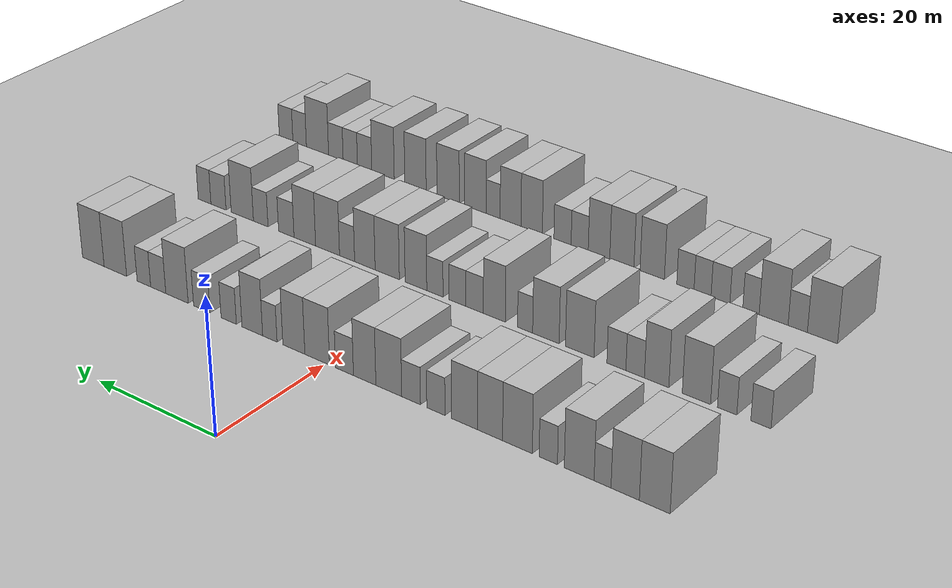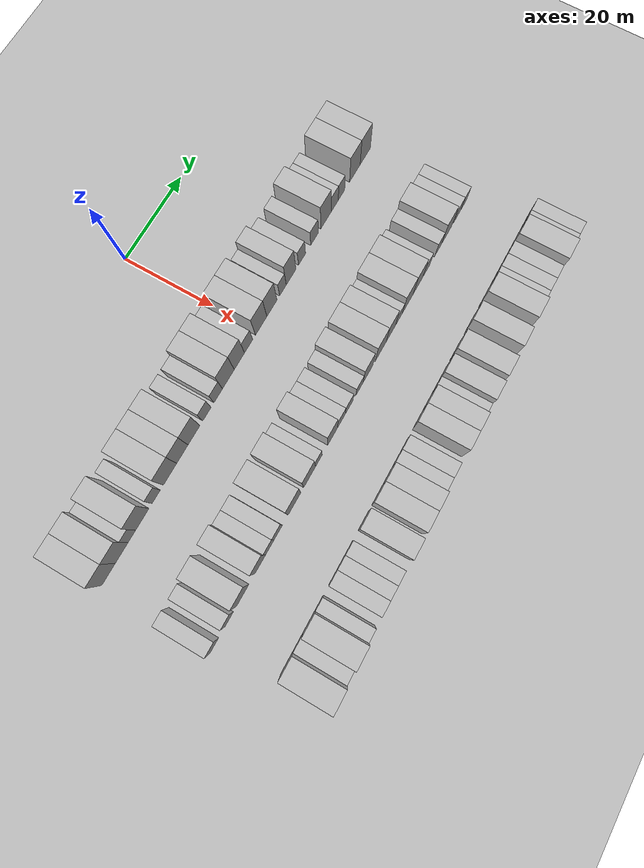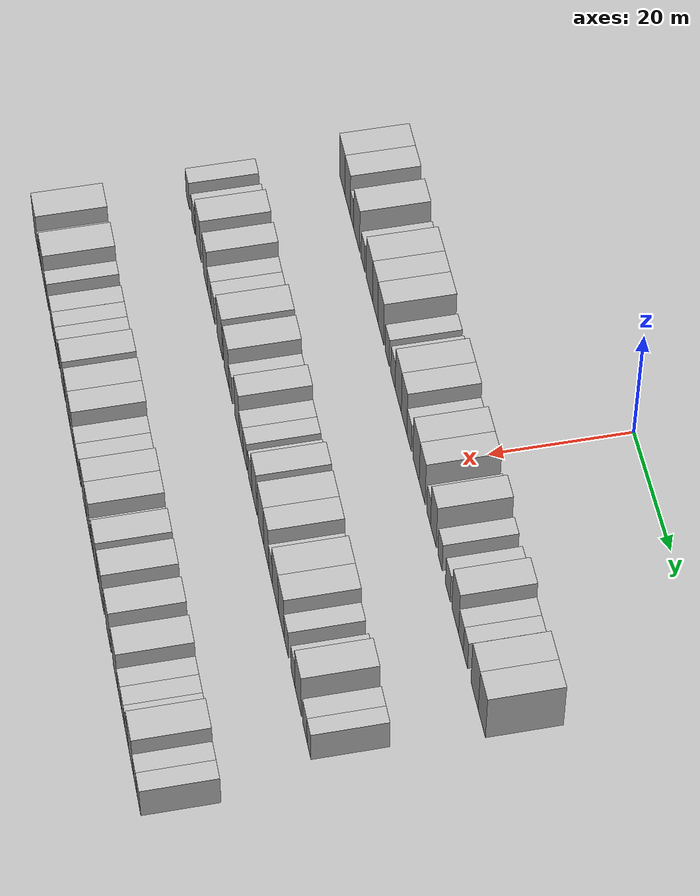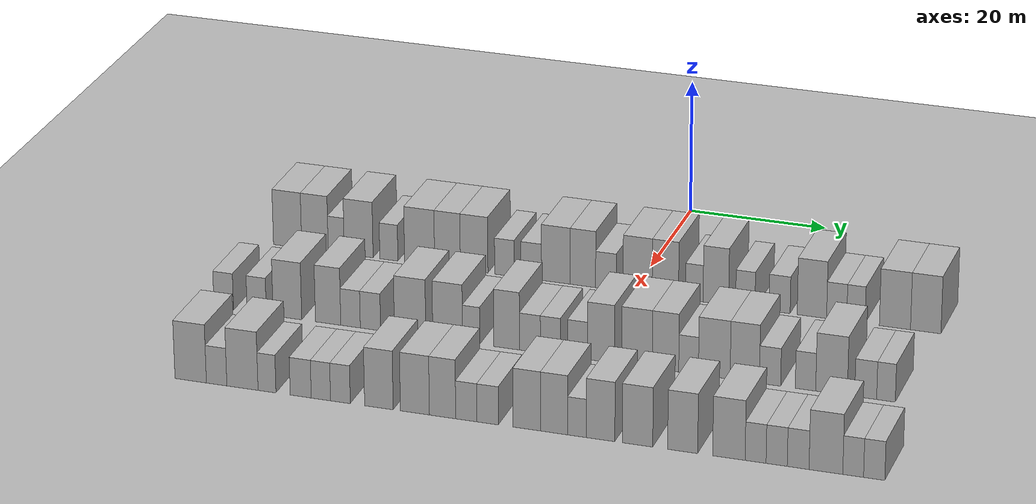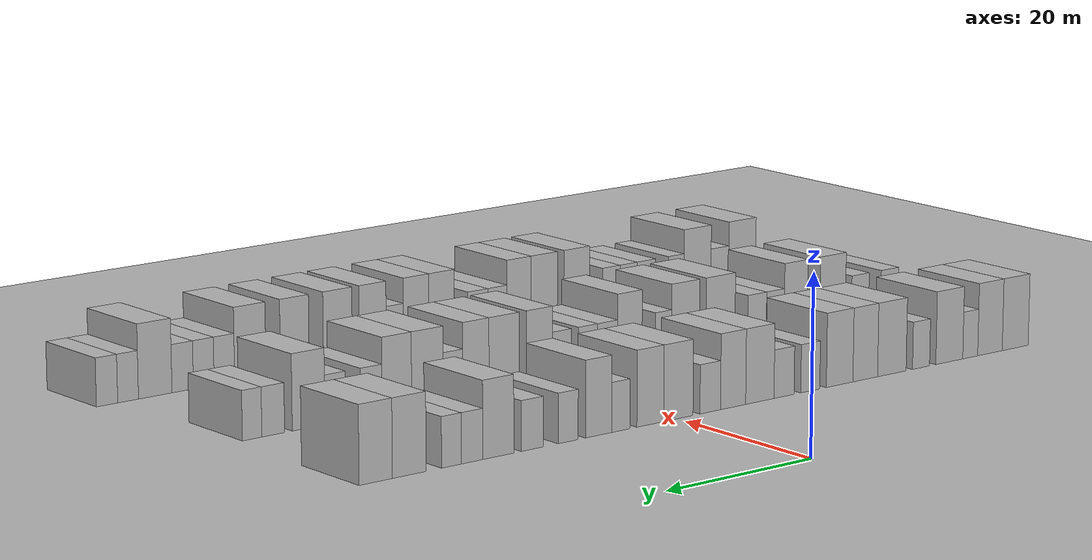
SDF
<sdf version="1.6">
 <world name="default">
  <include><name>ground_plane_1</name><uri>model://HANNAS_ground_plane</uri></include>
  <include>
   <name>ground_plane_2</name>
   <uri>model://HANNAS_ground_plane</uri>
   <pose>100 0 0  0 0 0</pose>
  </include>
  <model name="building_46">
   <static>1</static>
   <pose>25.0000 -50.6157 0 0.000000 0.000000 0.000000</pose>
   <link name="link">
    <pose>0 0 4.50 0 0 0</pose>
    <collision name="collision"><geometry><box><size>10.0000 4.2620 9.0000</size></box></geometry></collision>
    <visual name="visual">
     <cast_shadows>0</cast_shadows>
     <geometry><box><size>10.0000 4.2620 9.0000</size></box></geometry>
     <material>
      <script>
       <uri>model://HANNAS_wall/materials/scripts</uri>
       <uri>model://HANNAS_wall/materials/textures</uri>
       <name>vrc/HANNAS_wall</name>
      </script>
     </material>
    </visual>
   </link>
  </model>
  <model name="building_47">
   <static>1</static>
   <pose>25.0000 -46.4929 0 0.000000 0.000000 0.000000</pose>
   <link name="link">
    <pose>0 0 4.50 0 0 0</pose>
    <collision name="collision"><geometry><box><size>10.0000 3.9836 9.0000</size></box></geometry></collision>
    <visual name="visual">
     <cast_shadows>0</cast_shadows>
     <geometry><box><size>10.0000 3.9836 9.0000</size></box></geometry>
     <material>
      <script>
       <uri>model://HANNAS_wall/materials/scripts</uri>
       <uri>model://HANNAS_wall/materials/textures</uri>
       <name>vrc/HANNAS_wall</name>
      </script>
     </material>
    </visual>
   </link>
  </model>
  <model name="building_48">
   <static>1</static>
   <pose>25.0000 -43.2947 0 0.000000 0.000000 0.000000</pose>
   <link name="link">
    <pose>0 0 3.00 0 0 0</pose>
    <collision name="collision"><geometry><box><size>10.0000 2.4129 6.0000</size></box></geometry></collision>
    <visual name="visual">
     <cast_shadows>0</cast_shadows>
     <geometry><box><size>10.0000 2.4129 6.0000</size></box></geometry>
     <material>
      <script>
       <uri>model://HANNAS_wall/materials/scripts</uri>
       <uri>model://HANNAS_wall/materials/textures</uri>
       <name>vrc/HANNAS_wall</name>
      </script>
     </material>
    </visual>
   </link>
  </model>
  <model name="building_49">
   <static>1</static>
   <pose>25.0000 -39.9360 0 0.000000 0.000000 0.000000</pose>
   <link name="link">
    <pose>0 0 4.50 0 0 0</pose>
    <collision name="collision"><geometry><box><size>10.0000 4.3044 9.0000</size></box></geometry></collision>
    <visual name="visual">
     <cast_shadows>0</cast_shadows>
     <geometry><box><size>10.0000 4.3044 9.0000</size></box></geometry>
     <material>
      <script>
       <uri>model://HANNAS_wall/materials/scripts</uri>
       <uri>model://HANNAS_wall/materials/textures</uri>
       <name>vrc/HANNAS_wall</name>
      </script>
     </material>
    </visual>
   </link>
  </model>
  <model name="building_50">
   <static>1</static>
   <pose>25.0000 -35.4360 0 0.000000 0.000000 0.000000</pose>
   <link name="link">
    <pose>0 0 3.00 0 0 0</pose>
    <collision name="collision"><geometry><box><size>10.0000 2.6955 6.0000</size></box></geometry></collision>
    <visual name="visual">
     <cast_shadows>0</cast_shadows>
     <geometry><box><size>10.0000 2.6955 6.0000</size></box></geometry>
     <material>
      <script>
       <uri>model://HANNAS_wall/materials/scripts</uri>
       <uri>model://HANNAS_wall/materials/textures</uri>
       <name>vrc/HANNAS_wall</name>
      </script>
     </material>
    </visual>
   </link>
  </model>
  <model name="building_51">
   <static>1</static>
   <pose>25.0000 -30.8599 0 0.000000 0.000000 0.000000</pose>
   <link name="link">
    <pose>0 0 4.50 0 0 0</pose>
    <collision name="collision"><geometry><box><size>10.0000 4.4568 9.0000</size></box></geometry></collision>
    <visual name="visual">
     <cast_shadows>0</cast_shadows>
     <geometry><box><size>10.0000 4.4568 9.0000</size></box></geometry>
     <material>
      <script>
       <uri>model://HANNAS_wall/materials/scripts</uri>
       <uri>model://HANNAS_wall/materials/textures</uri>
       <name>vrc/HANNAS_wall</name>
      </script>
     </material>
    </visual>
   </link>
  </model>
  <model name="building_52">
   <static>1</static>
   <pose>25.0000 -26.7289 0 0.000000 0.000000 0.000000</pose>
   <link name="link">
    <pose>0 0 4.50 0 0 0</pose>
    <collision name="collision"><geometry><box><size>10.0000 3.8052 9.0000</size></box></geometry></collision>
    <visual name="visual">
     <cast_shadows>0</cast_shadows>
     <geometry><box><size>10.0000 3.8052 9.0000</size></box></geometry>
     <material>
      <script>
       <uri>model://HANNAS_wall/materials/scripts</uri>
       <uri>model://HANNAS_wall/materials/textures</uri>
       <name>vrc/HANNAS_wall</name>
      </script>
     </material>
    </visual>
   </link>
  </model>
  <model name="building_53">
   <static>1</static>
   <pose>25.0000 -22.7991 0 0.000000 0.000000 0.000000</pose>
   <link name="link">
    <pose>0 0 4.50 0 0 0</pose>
    <collision name="collision"><geometry><box><size>10.0000 4.0543 9.0000</size></box></geometry></collision>
    <visual name="visual">
     <cast_shadows>0</cast_shadows>
     <geometry><box><size>10.0000 4.0543 9.0000</size></box></geometry>
     <material>
      <script>
       <uri>model://HANNAS_wall/materials/scripts</uri>
       <uri>model://HANNAS_wall/materials/textures</uri>
       <name>vrc/HANNAS_wall</name>
      </script>
     </material>
    </visual>
   </link>
  </model>
  <model name="building_54">
   <static>1</static>
   <pose>25.0000 -18.3393 0 0.000000 0.000000 0.000000</pose>
   <link name="link">
    <pose>0 0 3.00 0 0 0</pose>
    <collision name="collision"><geometry><box><size>10.0000 2.8654 6.0000</size></box></geometry></collision>
    <visual name="visual">
     <cast_shadows>0</cast_shadows>
     <geometry><box><size>10.0000 2.8654 6.0000</size></box></geometry>
     <material>
      <script>
       <uri>model://HANNAS_wall/materials/scripts</uri>
       <uri>model://HANNAS_wall/materials/textures</uri>
       <name>vrc/HANNAS_wall</name>
      </script>
     </material>
    </visual>
   </link>
  </model>
  <model name="building_55">
   <static>1</static>
   <pose>25.0000 -14.4096 0 0.000000 0.000000 0.000000</pose>
   <link name="link">
    <pose>0 0 3.00 0 0 0</pose>
    <collision name="collision"><geometry><box><size>10.0000 2.9939 6.0000</size></box></geometry></collision>
    <visual name="visual">
     <cast_shadows>0</cast_shadows>
     <geometry><box><size>10.0000 2.9939 6.0000</size></box></geometry>
     <material>
      <script>
       <uri>model://HANNAS_wall/materials/scripts</uri>
       <uri>model://HANNAS_wall/materials/textures</uri>
       <name>vrc/HANNAS_wall</name>
      </script>
     </material>
    </visual>
   </link>
  </model>
  <model name="building_56">
   <static>1</static>
   <pose>25.0000 -10.8188 0 0.000000 0.000000 0.000000</pose>
   <link name="link">
    <pose>0 0 4.50 0 0 0</pose>
    <collision name="collision"><geometry><box><size>10.0000 4.1877 9.0000</size></box></geometry></collision>
    <visual name="visual">
     <cast_shadows>0</cast_shadows>
     <geometry><box><size>10.0000 4.1877 9.0000</size></box></geometry>
     <material>
      <script>
       <uri>model://HANNAS_wall/materials/scripts</uri>
       <uri>model://HANNAS_wall/materials/textures</uri>
       <name>vrc/HANNAS_wall</name>
      </script>
     </material>
    </visual>
   </link>
  </model>
  <model name="building_57">
   <static>1</static>
   <pose>25.0000 -6.8836 0 0.000000 0.000000 0.000000</pose>
   <link name="link">
    <pose>0 0 4.50 0 0 0</pose>
    <collision name="collision"><geometry><box><size>10.0000 3.6826 9.0000</size></box></geometry></collision>
    <visual name="visual">
     <cast_shadows>0</cast_shadows>
     <geometry><box><size>10.0000 3.6826 9.0000</size></box></geometry>
     <material>
      <script>
       <uri>model://HANNAS_wall/materials/scripts</uri>
       <uri>model://HANNAS_wall/materials/textures</uri>
       <name>vrc/HANNAS_wall</name>
      </script>
     </material>
    </visual>
   </link>
  </model>
  <model name="building_58">
   <static>1</static>
   <pose>25.0000 -3.5515 0 0.000000 0.000000 0.000000</pose>
   <link name="link">
    <pose>0 0 3.00 0 0 0</pose>
    <collision name="collision"><geometry><box><size>10.0000 2.9817 6.0000</size></box></geometry></collision>
    <visual name="visual">
     <cast_shadows>0</cast_shadows>
     <geometry><box><size>10.0000 2.9817 6.0000</size></box></geometry>
     <material>
      <script>
       <uri>model://HANNAS_wall/materials/scripts</uri>
       <uri>model://HANNAS_wall/materials/textures</uri>
       <name>vrc/HANNAS_wall</name>
      </script>
     </material>
    </visual>
   </link>
  </model>
  <model name="building_59">
   <static>1</static>
   <pose>25.0000 1.0328 0 0.000000 0.000000 0.000000</pose>
   <link name="link">
    <pose>0 0 4.50 0 0 0</pose>
    <collision name="collision"><geometry><box><size>10.0000 4.1870 9.0000</size></box></geometry></collision>
    <visual name="visual">
     <cast_shadows>0</cast_shadows>
     <geometry><box><size>10.0000 4.1870 9.0000</size></box></geometry>
     <material>
      <script>
       <uri>model://HANNAS_wall/materials/scripts</uri>
       <uri>model://HANNAS_wall/materials/textures</uri>
       <name>vrc/HANNAS_wall</name>
      </script>
     </material>
    </visual>
   </link>
  </model>
  <model name="building_60">
   <static>1</static>
   <pose>25.0000 5.0197 0 0.000000 0.000000 0.000000</pose>
   <link name="link">
    <pose>0 0 4.50 0 0 0</pose>
    <collision name="collision"><geometry><box><size>10.0000 3.7867 9.0000</size></box></geometry></collision>
    <visual name="visual">
     <cast_shadows>0</cast_shadows>
     <geometry><box><size>10.0000 3.7867 9.0000</size></box></geometry>
     <material>
      <script>
       <uri>model://HANNAS_wall/materials/scripts</uri>
       <uri>model://HANNAS_wall/materials/textures</uri>
       <name>vrc/HANNAS_wall</name>
      </script>
     </material>
    </visual>
   </link>
  </model>
  <model name="building_61">
   <static>1</static>
   <pose>25.0000 9.1701 0 0.000000 0.000000 0.000000</pose>
   <link name="link">
    <pose>0 0 3.00 0 0 0</pose>
    <collision name="collision"><geometry><box><size>10.0000 2.5142 6.0000</size></box></geometry></collision>
    <visual name="visual">
     <cast_shadows>0</cast_shadows>
     <geometry><box><size>10.0000 2.5142 6.0000</size></box></geometry>
     <material>
      <script>
       <uri>model://HANNAS_wall/materials/scripts</uri>
       <uri>model://HANNAS_wall/materials/textures</uri>
       <name>vrc/HANNAS_wall</name>
      </script>
     </material>
    </visual>
   </link>
  </model>
  <model name="building_62">
   <static>1</static>
   <pose>25.0000 12.2522 0 0.000000 0.000000 0.000000</pose>
   <link name="link">
    <pose>0 0 4.50 0 0 0</pose>
    <collision name="collision"><geometry><box><size>10.0000 3.6499 9.0000</size></box></geometry></collision>
    <visual name="visual">
     <cast_shadows>0</cast_shadows>
     <geometry><box><size>10.0000 3.6499 9.0000</size></box></geometry>
     <material>
      <script>
       <uri>model://HANNAS_wall/materials/scripts</uri>
       <uri>model://HANNAS_wall/materials/textures</uri>
       <name>vrc/HANNAS_wall</name>
      </script>
     </material>
    </visual>
   </link>
  </model>
  <model name="building_63">
   <static>1</static>
   <pose>25.0000 16.4479 0 0.000000 0.000000 0.000000</pose>
   <link name="link">
    <pose>0 0 3.00 0 0 0</pose>
    <collision name="collision"><geometry><box><size>10.0000 2.7415 6.0000</size></box></geometry></collision>
    <visual name="visual">
     <cast_shadows>0</cast_shadows>
     <geometry><box><size>10.0000 2.7415 6.0000</size></box></geometry>
     <material>
      <script>
       <uri>model://HANNAS_wall/materials/scripts</uri>
       <uri>model://HANNAS_wall/materials/textures</uri>
       <name>vrc/HANNAS_wall</name>
      </script>
     </material>
    </visual>
   </link>
  </model>
  <model name="building_64">
   <static>1</static>
   <pose>25.0000 21.3149 0 0.000000 0.000000 0.000000</pose>
   <link name="link">
    <pose>0 0 3.00 0 0 0</pose>
    <collision name="collision"><geometry><box><size>10.0000 2.9923 6.0000</size></box></geometry></collision>
    <visual name="visual">
     <cast_shadows>0</cast_shadows>
     <geometry><box><size>10.0000 2.9923 6.0000</size></box></geometry>
     <material>
      <script>
       <uri>model://HANNAS_wall/materials/scripts</uri>
       <uri>model://HANNAS_wall/materials/textures</uri>
       <name>vrc/HANNAS_wall</name>
      </script>
     </material>
    </visual>
   </link>
  </model>
  <model name="building_65">
   <static>1</static>
   <pose>25.0000 25.8842 0 0.000000 0.000000 0.000000</pose>
   <link name="link">
    <pose>0 0 4.50 0 0 0</pose>
    <collision name="collision"><geometry><box><size>10.0000 4.1463 9.0000</size></box></geometry></collision>
    <visual name="visual">
     <cast_shadows>0</cast_shadows>
     <geometry><box><size>10.0000 4.1463 9.0000</size></box></geometry>
     <material>
      <script>
       <uri>model://HANNAS_wall/materials/scripts</uri>
       <uri>model://HANNAS_wall/materials/textures</uri>
       <name>vrc/HANNAS_wall</name>
      </script>
     </material>
    </visual>
   </link>
  </model>
  <model name="building_66">
   <static>1</static>
   <pose>25.0000 29.3774 0 0.000000 0.000000 0.000000</pose>
   <link name="link">
    <pose>0 0 3.00 0 0 0</pose>
    <collision name="collision"><geometry><box><size>10.0000 2.8401 6.0000</size></box></geometry></collision>
    <visual name="visual">
     <cast_shadows>0</cast_shadows>
     <geometry><box><size>10.0000 2.8401 6.0000</size></box></geometry>
     <material>
      <script>
       <uri>model://HANNAS_wall/materials/scripts</uri>
       <uri>model://HANNAS_wall/materials/textures</uri>
       <name>vrc/HANNAS_wall</name>
      </script>
     </material>
    </visual>
   </link>
  </model>
  <model name="building_67">
   <static>1</static>
   <pose>25.0000 32.0811 0 0.000000 0.000000 0.000000</pose>
   <link name="link">
    <pose>0 0 3.00 0 0 0</pose>
    <collision name="collision"><geometry><box><size>10.0000 2.5674 6.0000</size></box></geometry></collision>
    <visual name="visual">
     <cast_shadows>0</cast_shadows>
     <geometry><box><size>10.0000 2.5674 6.0000</size></box></geometry>
     <material>
      <script>
       <uri>model://HANNAS_wall/materials/scripts</uri>
       <uri>model://HANNAS_wall/materials/textures</uri>
       <name>vrc/HANNAS_wall</name>
      </script>
     </material>
    </visual>
   </link>
  </model>
  <model name="building_68">
   <static>1</static>
   <pose>25.0000 37.5372 0 0.000000 0.000000 0.000000</pose>
   <link name="link">
    <pose>0 0 4.50 0 0 0</pose>
    <collision name="collision"><geometry><box><size>10.0000 4.3449 9.0000</size></box></geometry></collision>
    <visual name="visual">
     <cast_shadows>0</cast_shadows>
     <geometry><box><size>10.0000 4.3449 9.0000</size></box></geometry>
     <material>
      <script>
       <uri>model://HANNAS_wall/materials/scripts</uri>
       <uri>model://HANNAS_wall/materials/textures</uri>
       <name>vrc/HANNAS_wall</name>
      </script>
     </material>
    </visual>
   </link>
  </model>
  <model name="building_69">
   <static>1</static>
   <pose>25.0000 41.8256 0 0.000000 0.000000 0.000000</pose>
   <link name="link">
    <pose>0 0 4.50 0 0 0</pose>
    <collision name="collision"><geometry><box><size>10.0000 4.2319 9.0000</size></box></geometry></collision>
    <visual name="visual">
     <cast_shadows>0</cast_shadows>
     <geometry><box><size>10.0000 4.2319 9.0000</size></box></geometry>
     <material>
      <script>
       <uri>model://HANNAS_wall/materials/scripts</uri>
       <uri>model://HANNAS_wall/materials/textures</uri>
       <name>vrc/HANNAS_wall</name>
      </script>
     </material>
    </visual>
   </link>
  </model>
  <model name="building_177">
   <static>1</static>
   <pose>47.0000 -51.5618 0 0.000000 0.000000 0.000000</pose>
   <link name="link">
    <pose>0 0 3.00 0 0 0</pose>
    <collision name="collision"><geometry><box><size>10.0000 2.8732 6.0000</size></box></geometry></collision>
    <visual name="visual">
     <cast_shadows>0</cast_shadows>
     <geometry><box><size>10.0000 2.8732 6.0000</size></box></geometry>
     <material>
      <script>
       <uri>model://HANNAS_wall/materials/scripts</uri>
       <uri>model://HANNAS_wall/materials/textures</uri>
       <name>vrc/HANNAS_wall</name>
      </script>
     </material>
    </visual>
   </link>
  </model>
  <model name="building_178">
   <static>1</static>
   <pose>47.0000 -46.7230 0 0.000000 0.000000 0.000000</pose>
   <link name="link">
    <pose>0 0 3.00 0 0 0</pose>
    <collision name="collision"><geometry><box><size>10.0000 2.8044 6.0000</size></box></geometry></collision>
    <visual name="visual">
     <cast_shadows>0</cast_shadows>
     <geometry><box><size>10.0000 2.8044 6.0000</size></box></geometry>
     <material>
      <script>
       <uri>model://HANNAS_wall/materials/scripts</uri>
       <uri>model://HANNAS_wall/materials/textures</uri>
       <name>vrc/HANNAS_wall</name>
      </script>
     </material>
    </visual>
   </link>
  </model>
  <model name="building_179">
   <static>1</static>
   <pose>47.0000 -42.2359 0 0.000000 0.000000 0.000000</pose>
   <link name="link">
    <pose>0 0 4.50 0 0 0</pose>
    <collision name="collision"><geometry><box><size>10.0000 4.1699 9.0000</size></box></geometry></collision>
    <visual name="visual">
     <cast_shadows>0</cast_shadows>
     <geometry><box><size>10.0000 4.1699 9.0000</size></box></geometry>
     <material>
      <script>
       <uri>model://HANNAS_wall/materials/scripts</uri>
       <uri>model://HANNAS_wall/materials/textures</uri>
       <name>vrc/HANNAS_wall</name>
      </script>
     </material>
    </visual>
   </link>
  </model>
  <model name="building_180">
   <static>1</static>
   <pose>47.0000 -36.3183 0 0.000000 0.000000 0.000000</pose>
   <link name="link">
    <pose>0 0 4.50 0 0 0</pose>
    <collision name="collision"><geometry><box><size>10.0000 3.6653 9.0000</size></box></geometry></collision>
    <visual name="visual">
     <cast_shadows>0</cast_shadows>
     <geometry><box><size>10.0000 3.6653 9.0000</size></box></geometry>
     <material>
      <script>
       <uri>model://HANNAS_wall/materials/scripts</uri>
       <uri>model://HANNAS_wall/materials/textures</uri>
       <name>vrc/HANNAS_wall</name>
      </script>
     </material>
    </visual>
   </link>
  </model>
  <model name="building_181">
   <static>1</static>
   <pose>47.0000 -33.0735 0 0.000000 0.000000 0.000000</pose>
   <link name="link">
    <pose>0 0 3.00 0 0 0</pose>
    <collision name="collision"><geometry><box><size>10.0000 2.8243 6.0000</size></box></geometry></collision>
    <visual name="visual">
     <cast_shadows>0</cast_shadows>
     <geometry><box><size>10.0000 2.8243 6.0000</size></box></geometry>
     <material>
      <script>
       <uri>model://HANNAS_wall/materials/scripts</uri>
       <uri>model://HANNAS_wall/materials/textures</uri>
       <name>vrc/HANNAS_wall</name>
      </script>
     </material>
    </visual>
   </link>
  </model>
  <model name="building_182">
   <static>1</static>
   <pose>47.0000 -30.2008 0 0.000000 0.000000 0.000000</pose>
   <link name="link">
    <pose>0 0 3.00 0 0 0</pose>
    <collision name="collision"><geometry><box><size>10.0000 2.9211 6.0000</size></box></geometry></collision>
    <visual name="visual">
     <cast_shadows>0</cast_shadows>
     <geometry><box><size>10.0000 2.9211 6.0000</size></box></geometry>
     <material>
      <script>
       <uri>model://HANNAS_wall/materials/scripts</uri>
       <uri>model://HANNAS_wall/materials/textures</uri>
       <name>vrc/HANNAS_wall</name>
      </script>
     </material>
    </visual>
   </link>
  </model>
  <model name="building_183">
   <static>1</static>
   <pose>47.0000 -24.4907 0 0.000000 0.000000 0.000000</pose>
   <link name="link">
    <pose>0 0 4.50 0 0 0</pose>
    <collision name="collision"><geometry><box><size>10.0000 4.4991 9.0000</size></box></geometry></collision>
    <visual name="visual">
     <cast_shadows>0</cast_shadows>
     <geometry><box><size>10.0000 4.4991 9.0000</size></box></geometry>
     <material>
      <script>
       <uri>model://HANNAS_wall/materials/scripts</uri>
       <uri>model://HANNAS_wall/materials/textures</uri>
       <name>vrc/HANNAS_wall</name>
      </script>
     </material>
    </visual>
   </link>
  </model>
  <model name="building_184">
   <static>1</static>
   <pose>47.0000 -19.1173 0 0.000000 0.000000 0.000000</pose>
   <link name="link">
    <pose>0 0 4.50 0 0 0</pose>
    <collision name="collision"><geometry><box><size>10.0000 4.2477 9.0000</size></box></geometry></collision>
    <visual name="visual">
     <cast_shadows>0</cast_shadows>
     <geometry><box><size>10.0000 4.2477 9.0000</size></box></geometry>
     <material>
      <script>
       <uri>model://HANNAS_wall/materials/scripts</uri>
       <uri>model://HANNAS_wall/materials/textures</uri>
       <name>vrc/HANNAS_wall</name>
      </script>
     </material>
    </visual>
   </link>
  </model>
  <model name="building_185">
   <static>1</static>
   <pose>47.0000 -15.7662 0 0.000000 0.000000 0.000000</pose>
   <link name="link">
    <pose>0 0 3.00 0 0 0</pose>
    <collision name="collision"><geometry><box><size>10.0000 2.4545 6.0000</size></box></geometry></collision>
    <visual name="visual">
     <cast_shadows>0</cast_shadows>
     <geometry><box><size>10.0000 2.4545 6.0000</size></box></geometry>
     <material>
      <script>
       <uri>model://HANNAS_wall/materials/scripts</uri>
       <uri>model://HANNAS_wall/materials/textures</uri>
       <name>vrc/HANNAS_wall</name>
      </script>
     </material>
    </visual>
   </link>
  </model>
  <model name="building_186">
   <static>1</static>
   <pose>47.0000 -10.7228 0 0.000000 0.000000 0.000000</pose>
   <link name="link">
    <pose>0 0 4.50 0 0 0</pose>
    <collision name="collision"><geometry><box><size>10.0000 3.6322 9.0000</size></box></geometry></collision>
    <visual name="visual">
     <cast_shadows>0</cast_shadows>
     <geometry><box><size>10.0000 3.6322 9.0000</size></box></geometry>
     <material>
      <script>
       <uri>model://HANNAS_wall/materials/scripts</uri>
       <uri>model://HANNAS_wall/materials/textures</uri>
       <name>vrc/HANNAS_wall</name>
      </script>
     </material>
    </visual>
   </link>
  </model>
  <model name="building_187">
   <static>1</static>
   <pose>47.0000 -7.4313 0 0.000000 0.000000 0.000000</pose>
   <link name="link">
    <pose>0 0 3.00 0 0 0</pose>
    <collision name="collision"><geometry><box><size>10.0000 2.9509 6.0000</size></box></geometry></collision>
    <visual name="visual">
     <cast_shadows>0</cast_shadows>
     <geometry><box><size>10.0000 2.9509 6.0000</size></box></geometry>
     <material>
      <script>
       <uri>model://HANNAS_wall/materials/scripts</uri>
       <uri>model://HANNAS_wall/materials/textures</uri>
       <name>vrc/HANNAS_wall</name>
      </script>
     </material>
    </visual>
   </link>
  </model>
  <model name="building_188">
   <static>1</static>
   <pose>47.0000 -4.5357 0 0.000000 0.000000 0.000000</pose>
   <link name="link">
    <pose>0 0 3.00 0 0 0</pose>
    <collision name="collision"><geometry><box><size>10.0000 2.8403 6.0000</size></box></geometry></collision>
    <visual name="visual">
     <cast_shadows>0</cast_shadows>
     <geometry><box><size>10.0000 2.8403 6.0000</size></box></geometry>
     <material>
      <script>
       <uri>model://HANNAS_wall/materials/scripts</uri>
       <uri>model://HANNAS_wall/materials/textures</uri>
       <name>vrc/HANNAS_wall</name>
      </script>
     </material>
    </visual>
   </link>
  </model>
  <model name="building_189">
   <static>1</static>
   <pose>47.0000 -0.7223 0 0.000000 0.000000 0.000000</pose>
   <link name="link">
    <pose>0 0 3.00 0 0 0</pose>
    <collision name="collision"><geometry><box><size>10.0000 2.7866 6.0000</size></box></geometry></collision>
    <visual name="visual">
     <cast_shadows>0</cast_shadows>
     <geometry><box><size>10.0000 2.7866 6.0000</size></box></geometry>
     <material>
      <script>
       <uri>model://HANNAS_wall/materials/scripts</uri>
       <uri>model://HANNAS_wall/materials/textures</uri>
       <name>vrc/HANNAS_wall</name>
      </script>
     </material>
    </visual>
   </link>
  </model>
  <model name="building_190">
   <static>1</static>
   <pose>47.0000 2.5523 0 0.000000 0.000000 0.000000</pose>
   <link name="link">
    <pose>0 0 4.50 0 0 0</pose>
    <collision name="collision"><geometry><box><size>10.0000 3.7625 9.0000</size></box></geometry></collision>
    <visual name="visual">
     <cast_shadows>0</cast_shadows>
     <geometry><box><size>10.0000 3.7625 9.0000</size></box></geometry>
     <material>
      <script>
       <uri>model://HANNAS_wall/materials/scripts</uri>
       <uri>model://HANNAS_wall/materials/textures</uri>
       <name>vrc/HANNAS_wall</name>
      </script>
     </material>
    </visual>
   </link>
  </model>
  <model name="building_191">
   <static>1</static>
   <pose>47.0000 7.5736 0 0.000000 0.000000 0.000000</pose>
   <link name="link">
    <pose>0 0 4.50 0 0 0</pose>
    <collision name="collision"><geometry><box><size>10.0000 4.2803 9.0000</size></box></geometry></collision>
    <visual name="visual">
     <cast_shadows>0</cast_shadows>
     <geometry><box><size>10.0000 4.2803 9.0000</size></box></geometry>
     <material>
      <script>
       <uri>model://HANNAS_wall/materials/scripts</uri>
       <uri>model://HANNAS_wall/materials/textures</uri>
       <name>vrc/HANNAS_wall</name>
      </script>
     </material>
    </visual>
   </link>
  </model>
  <model name="building_192">
   <static>1</static>
   <pose>47.0000 11.5489 0 0.000000 0.000000 0.000000</pose>
   <link name="link">
    <pose>0 0 4.50 0 0 0</pose>
    <collision name="collision"><geometry><box><size>10.0000 3.6703 9.0000</size></box></geometry></collision>
    <visual name="visual">
     <cast_shadows>0</cast_shadows>
     <geometry><box><size>10.0000 3.6703 9.0000</size></box></geometry>
     <material>
      <script>
       <uri>model://HANNAS_wall/materials/scripts</uri>
       <uri>model://HANNAS_wall/materials/textures</uri>
       <name>vrc/HANNAS_wall</name>
      </script>
     </material>
    </visual>
   </link>
  </model>
  <model name="building_193">
   <static>1</static>
   <pose>47.0000 14.7496 0 0.000000 0.000000 0.000000</pose>
   <link name="link">
    <pose>0 0 3.00 0 0 0</pose>
    <collision name="collision"><geometry><box><size>10.0000 2.7311 6.0000</size></box></geometry></collision>
    <visual name="visual">
     <cast_shadows>0</cast_shadows>
     <geometry><box><size>10.0000 2.7311 6.0000</size></box></geometry>
     <material>
      <script>
       <uri>model://HANNAS_wall/materials/scripts</uri>
       <uri>model://HANNAS_wall/materials/textures</uri>
       <name>vrc/HANNAS_wall</name>
      </script>
     </material>
    </visual>
   </link>
  </model>
  <model name="building_194">
   <static>1</static>
   <pose>47.0000 18.3026 0 0.000000 0.000000 0.000000</pose>
   <link name="link">
    <pose>0 0 4.50 0 0 0</pose>
    <collision name="collision"><geometry><box><size>10.0000 4.3749 9.0000</size></box></geometry></collision>
    <visual name="visual">
     <cast_shadows>0</cast_shadows>
     <geometry><box><size>10.0000 4.3749 9.0000</size></box></geometry>
     <material>
      <script>
       <uri>model://HANNAS_wall/materials/scripts</uri>
       <uri>model://HANNAS_wall/materials/textures</uri>
       <name>vrc/HANNAS_wall</name>
      </script>
     </material>
    </visual>
   </link>
  </model>
  <model name="building_195">
   <static>1</static>
   <pose>47.0000 22.4997 0 0.000000 0.000000 0.000000</pose>
   <link name="link">
    <pose>0 0 4.50 0 0 0</pose>
    <collision name="collision"><geometry><box><size>10.0000 4.0193 9.0000</size></box></geometry></collision>
    <visual name="visual">
     <cast_shadows>0</cast_shadows>
     <geometry><box><size>10.0000 4.0193 9.0000</size></box></geometry>
     <material>
      <script>
       <uri>model://HANNAS_wall/materials/scripts</uri>
       <uri>model://HANNAS_wall/materials/textures</uri>
       <name>vrc/HANNAS_wall</name>
      </script>
     </material>
    </visual>
   </link>
  </model>
  <model name="building_196">
   <static>1</static>
   <pose>47.0000 25.9637 0 0.000000 0.000000 0.000000</pose>
   <link name="link">
    <pose>0 0 3.00 0 0 0</pose>
    <collision name="collision"><geometry><box><size>10.0000 2.9088 6.0000</size></box></geometry></collision>
    <visual name="visual">
     <cast_shadows>0</cast_shadows>
     <geometry><box><size>10.0000 2.9088 6.0000</size></box></geometry>
     <material>
      <script>
       <uri>model://HANNAS_wall/materials/scripts</uri>
       <uri>model://HANNAS_wall/materials/textures</uri>
       <name>vrc/HANNAS_wall</name>
      </script>
     </material>
    </visual>
   </link>
  </model>
  <model name="building_197">
   <static>1</static>
   <pose>47.0000 30.8108 0 0.000000 0.000000 0.000000</pose>
   <link name="link">
    <pose>0 0 3.00 0 0 0</pose>
    <collision name="collision"><geometry><box><size>10.0000 2.7855 6.0000</size></box></geometry></collision>
    <visual name="visual">
     <cast_shadows>0</cast_shadows>
     <geometry><box><size>10.0000 2.7855 6.0000</size></box></geometry>
     <material>
      <script>
       <uri>model://HANNAS_wall/materials/scripts</uri>
       <uri>model://HANNAS_wall/materials/textures</uri>
       <name>vrc/HANNAS_wall</name>
      </script>
     </material>
    </visual>
   </link>
  </model>
  <model name="building_198">
   <static>1</static>
   <pose>47.0000 34.3566 0 0.000000 0.000000 0.000000</pose>
   <link name="link">
    <pose>0 0 4.50 0 0 0</pose>
    <collision name="collision"><geometry><box><size>10.0000 4.3060 9.0000</size></box></geometry></collision>
    <visual name="visual">
     <cast_shadows>0</cast_shadows>
     <geometry><box><size>10.0000 4.3060 9.0000</size></box></geometry>
     <material>
      <script>
       <uri>model://HANNAS_wall/materials/scripts</uri>
       <uri>model://HANNAS_wall/materials/textures</uri>
       <name>vrc/HANNAS_wall</name>
      </script>
     </material>
    </visual>
   </link>
  </model>
  <model name="building_199">
   <static>1</static>
   <pose>47.0000 38.9921 0 0.000000 0.000000 0.000000</pose>
   <link name="link">
    <pose>0 0 3.00 0 0 0</pose>
    <collision name="collision"><geometry><box><size>10.0000 2.9650 6.0000</size></box></geometry></collision>
    <visual name="visual">
     <cast_shadows>0</cast_shadows>
     <geometry><box><size>10.0000 2.9650 6.0000</size></box></geometry>
     <material>
      <script>
       <uri>model://HANNAS_wall/materials/scripts</uri>
       <uri>model://HANNAS_wall/materials/textures</uri>
       <name>vrc/HANNAS_wall</name>
      </script>
     </material>
    </visual>
   </link>
  </model>
  <model name="building_200">
   <static>1</static>
   <pose>47.0000 41.7334 0 0.000000 0.000000 0.000000</pose>
   <link name="link">
    <pose>0 0 3.00 0 0 0</pose>
    <collision name="collision"><geometry><box><size>10.0000 2.5176 6.0000</size></box></geometry></collision>
    <visual name="visual">
     <cast_shadows>0</cast_shadows>
     <geometry><box><size>10.0000 2.5176 6.0000</size></box></geometry>
     <material>
      <script>
       <uri>model://HANNAS_wall/materials/scripts</uri>
       <uri>model://HANNAS_wall/materials/textures</uri>
       <name>vrc/HANNAS_wall</name>
      </script>
     </material>
    </visual>
   </link>
  </model>
  <model name="building_302">
   <static>1</static>
   <pose>69.0000 -47.5303 0 0.000000 0.000000 0.000000</pose>
   <link name="link">
    <pose>0 0 4.50 0 0 0</pose>
    <collision name="collision"><geometry><box><size>10.0000 4.4722 9.0000</size></box></geometry></collision>
    <visual name="visual">
     <cast_shadows>0</cast_shadows>
     <geometry><box><size>10.0000 4.4722 9.0000</size></box></geometry>
     <material>
      <script>
       <uri>model://HANNAS_wall/materials/scripts</uri>
       <uri>model://HANNAS_wall/materials/textures</uri>
       <name>vrc/HANNAS_wall</name>
      </script>
     </material>
    </visual>
   </link>
  </model>
  <model name="building_303">
   <static>1</static>
   <pose>69.0000 -43.8414 0 0.000000 0.000000 0.000000</pose>
   <link name="link">
    <pose>0 0 3.00 0 0 0</pose>
    <collision name="collision"><geometry><box><size>10.0000 2.9057 6.0000</size></box></geometry></collision>
    <visual name="visual">
     <cast_shadows>0</cast_shadows>
     <geometry><box><size>10.0000 2.9057 6.0000</size></box></geometry>
     <material>
      <script>
       <uri>model://HANNAS_wall/materials/scripts</uri>
       <uri>model://HANNAS_wall/materials/textures</uri>
       <name>vrc/HANNAS_wall</name>
      </script>
     </material>
    </visual>
   </link>
  </model>
  <model name="building_304">
   <static>1</static>
   <pose>69.0000 -40.1818 0 0.000000 0.000000 0.000000</pose>
   <link name="link">
    <pose>0 0 4.50 0 0 0</pose>
    <collision name="collision"><geometry><box><size>10.0000 4.4135 9.0000</size></box></geometry></collision>
    <visual name="visual">
     <cast_shadows>0</cast_shadows>
     <geometry><box><size>10.0000 4.4135 9.0000</size></box></geometry>
     <material>
      <script>
       <uri>model://HANNAS_wall/materials/scripts</uri>
       <uri>model://HANNAS_wall/materials/textures</uri>
       <name>vrc/HANNAS_wall</name>
      </script>
     </material>
    </visual>
   </link>
  </model>
  <model name="building_305">
   <static>1</static>
   <pose>69.0000 -36.7113 0 0.000000 0.000000 0.000000</pose>
   <link name="link">
    <pose>0 0 3.00 0 0 0</pose>
    <collision name="collision"><geometry><box><size>10.0000 2.5274 6.0000</size></box></geometry></collision>
    <visual name="visual">
     <cast_shadows>0</cast_shadows>
     <geometry><box><size>10.0000 2.5274 6.0000</size></box></geometry>
     <material>
      <script>
       <uri>model://HANNAS_wall/materials/scripts</uri>
       <uri>model://HANNAS_wall/materials/textures</uri>
       <name>vrc/HANNAS_wall</name>
      </script>
     </material>
    </visual>
   </link>
  </model>
  <model name="building_306">
   <static>1</static>
   <pose>69.0000 -31.9676 0 0.000000 0.000000 0.000000</pose>
   <link name="link">
    <pose>0 0 3.00 0 0 0</pose>
    <collision name="collision"><geometry><box><size>10.0000 2.9601 6.0000</size></box></geometry></collision>
    <visual name="visual">
     <cast_shadows>0</cast_shadows>
     <geometry><box><size>10.0000 2.9601 6.0000</size></box></geometry>
     <material>
      <script>
       <uri>model://HANNAS_wall/materials/scripts</uri>
       <uri>model://HANNAS_wall/materials/textures</uri>
       <name>vrc/HANNAS_wall</name>
      </script>
     </material>
    </visual>
   </link>
  </model>
  <model name="building_307">
   <static>1</static>
   <pose>69.0000 -29.1367 0 0.000000 0.000000 0.000000</pose>
   <link name="link">
    <pose>0 0 3.00 0 0 0</pose>
    <collision name="collision"><geometry><box><size>10.0000 2.7016 6.0000</size></box></geometry></collision>
    <visual name="visual">
     <cast_shadows>0</cast_shadows>
     <geometry><box><size>10.0000 2.7016 6.0000</size></box></geometry>
     <material>
      <script>
       <uri>model://HANNAS_wall/materials/scripts</uri>
       <uri>model://HANNAS_wall/materials/textures</uri>
       <name>vrc/HANNAS_wall</name>
      </script>
     </material>
    </visual>
   </link>
  </model>
  <model name="building_308">
   <static>1</static>
   <pose>69.0000 -26.4058 0 0.000000 0.000000 0.000000</pose>
   <link name="link">
    <pose>0 0 3.00 0 0 0</pose>
    <collision name="collision"><geometry><box><size>10.0000 2.7602 6.0000</size></box></geometry></collision>
    <visual name="visual">
     <cast_shadows>0</cast_shadows>
     <geometry><box><size>10.0000 2.7602 6.0000</size></box></geometry>
     <material>
      <script>
       <uri>model://HANNAS_wall/materials/scripts</uri>
       <uri>model://HANNAS_wall/materials/textures</uri>
       <name>vrc/HANNAS_wall</name>
      </script>
     </material>
    </visual>
   </link>
  </model>
  <model name="building_309">
   <static>1</static>
   <pose>69.0000 -21.0398 0 0.000000 0.000000 0.000000</pose>
   <link name="link">
    <pose>0 0 4.50 0 0 0</pose>
    <collision name="collision"><geometry><box><size>10.0000 3.9718 9.0000</size></box></geometry></collision>
    <visual name="visual">
     <cast_shadows>0</cast_shadows>
     <geometry><box><size>10.0000 3.9718 9.0000</size></box></geometry>
     <material>
      <script>
       <uri>model://HANNAS_wall/materials/scripts</uri>
       <uri>model://HANNAS_wall/materials/textures</uri>
       <name>vrc/HANNAS_wall</name>
      </script>
     </material>
    </visual>
   </link>
  </model>
  <model name="building_310">
   <static>1</static>
   <pose>69.0000 -16.0460 0 0.000000 0.000000 0.000000</pose>
   <link name="link">
    <pose>0 0 4.50 0 0 0</pose>
    <collision name="collision"><geometry><box><size>10.0000 4.0157 9.0000</size></box></geometry></collision>
    <visual name="visual">
     <cast_shadows>0</cast_shadows>
     <geometry><box><size>10.0000 4.0157 9.0000</size></box></geometry>
     <material>
      <script>
       <uri>model://HANNAS_wall/materials/scripts</uri>
       <uri>model://HANNAS_wall/materials/textures</uri>
       <name>vrc/HANNAS_wall</name>
      </script>
     </material>
    </visual>
   </link>
  </model>
  <model name="building_311">
   <static>1</static>
   <pose>69.0000 -12.2267 0 0.000000 0.000000 0.000000</pose>
   <link name="link">
    <pose>0 0 4.50 0 0 0</pose>
    <collision name="collision"><geometry><box><size>10.0000 3.6229 9.0000</size></box></geometry></collision>
    <visual name="visual">
     <cast_shadows>0</cast_shadows>
     <geometry><box><size>10.0000 3.6229 9.0000</size></box></geometry>
     <material>
      <script>
       <uri>model://HANNAS_wall/materials/scripts</uri>
       <uri>model://HANNAS_wall/materials/textures</uri>
       <name>vrc/HANNAS_wall</name>
      </script>
     </material>
    </visual>
   </link>
  </model>
  <model name="building_312">
   <static>1</static>
   <pose>69.0000 -8.9586 0 0.000000 0.000000 0.000000</pose>
   <link name="link">
    <pose>0 0 3.00 0 0 0</pose>
    <collision name="collision"><geometry><box><size>10.0000 2.9133 6.0000</size></box></geometry></collision>
    <visual name="visual">
     <cast_shadows>0</cast_shadows>
     <geometry><box><size>10.0000 2.9133 6.0000</size></box></geometry>
     <material>
      <script>
       <uri>model://HANNAS_wall/materials/scripts</uri>
       <uri>model://HANNAS_wall/materials/textures</uri>
       <name>vrc/HANNAS_wall</name>
      </script>
     </material>
    </visual>
   </link>
  </model>
  <model name="building_313">
   <static>1</static>
   <pose>69.0000 -6.0253 0 0.000000 0.000000 0.000000</pose>
   <link name="link">
    <pose>0 0 3.00 0 0 0</pose>
    <collision name="collision"><geometry><box><size>10.0000 2.9532 6.0000</size></box></geometry></collision>
    <visual name="visual">
     <cast_shadows>0</cast_shadows>
     <geometry><box><size>10.0000 2.9532 6.0000</size></box></geometry>
     <material>
      <script>
       <uri>model://HANNAS_wall/materials/scripts</uri>
       <uri>model://HANNAS_wall/materials/textures</uri>
       <name>vrc/HANNAS_wall</name>
      </script>
     </material>
    </visual>
   </link>
  </model>
  <model name="building_314">
   <static>1</static>
   <pose>69.0000 -0.6744 0 0.000000 0.000000 0.000000</pose>
   <link name="link">
    <pose>0 0 4.50 0 0 0</pose>
    <collision name="collision"><geometry><box><size>10.0000 3.7486 9.0000</size></box></geometry></collision>
    <visual name="visual">
     <cast_shadows>0</cast_shadows>
     <geometry><box><size>10.0000 3.7486 9.0000</size></box></geometry>
     <material>
      <script>
       <uri>model://HANNAS_wall/materials/scripts</uri>
       <uri>model://HANNAS_wall/materials/textures</uri>
       <name>vrc/HANNAS_wall</name>
      </script>
     </material>
    </visual>
   </link>
  </model>
  <model name="building_315">
   <static>1</static>
   <pose>69.0000 3.0452 0 0.000000 0.000000 0.000000</pose>
   <link name="link">
    <pose>0 0 4.50 0 0 0</pose>
    <collision name="collision"><geometry><box><size>10.0000 3.6907 9.0000</size></box></geometry></collision>
    <visual name="visual">
     <cast_shadows>0</cast_shadows>
     <geometry><box><size>10.0000 3.6907 9.0000</size></box></geometry>
     <material>
      <script>
       <uri>model://HANNAS_wall/materials/scripts</uri>
       <uri>model://HANNAS_wall/materials/textures</uri>
       <name>vrc/HANNAS_wall</name>
      </script>
     </material>
    </visual>
   </link>
  </model>
  <model name="building_316">
   <static>1</static>
   <pose>69.0000 6.1457 0 0.000000 0.000000 0.000000</pose>
   <link name="link">
    <pose>0 0 3.00 0 0 0</pose>
    <collision name="collision"><geometry><box><size>10.0000 2.5104 6.0000</size></box></geometry></collision>
    <visual name="visual">
     <cast_shadows>0</cast_shadows>
     <geometry><box><size>10.0000 2.5104 6.0000</size></box></geometry>
     <material>
      <script>
       <uri>model://HANNAS_wall/materials/scripts</uri>
       <uri>model://HANNAS_wall/materials/textures</uri>
       <name>vrc/HANNAS_wall</name>
      </script>
     </material>
    </visual>
   </link>
  </model>
  <model name="building_317">
   <static>1</static>
   <pose>69.0000 9.3304 0 0.000000 0.000000 0.000000</pose>
   <link name="link">
    <pose>0 0 4.50 0 0 0</pose>
    <collision name="collision"><geometry><box><size>10.0000 3.8589 9.0000</size></box></geometry></collision>
    <visual name="visual">
     <cast_shadows>0</cast_shadows>
     <geometry><box><size>10.0000 3.8589 9.0000</size></box></geometry>
     <material>
      <script>
       <uri>model://HANNAS_wall/materials/scripts</uri>
       <uri>model://HANNAS_wall/materials/textures</uri>
       <name>vrc/HANNAS_wall</name>
      </script>
     </material>
    </visual>
   </link>
  </model>
  <model name="building_318">
   <static>1</static>
   <pose>69.0000 14.3085 0 0.000000 0.000000 0.000000</pose>
   <link name="link">
    <pose>0 0 4.50 0 0 0</pose>
    <collision name="collision"><geometry><box><size>10.0000 4.0975 9.0000</size></box></geometry></collision>
    <visual name="visual">
     <cast_shadows>0</cast_shadows>
     <geometry><box><size>10.0000 4.0975 9.0000</size></box></geometry>
     <material>
      <script>
       <uri>model://HANNAS_wall/materials/scripts</uri>
       <uri>model://HANNAS_wall/materials/textures</uri>
       <name>vrc/HANNAS_wall</name>
      </script>
     </material>
    </visual>
   </link>
  </model>
  <model name="building_319">
   <static>1</static>
   <pose>69.0000 20.3614 0 0.000000 0.000000 0.000000</pose>
   <link name="link">
    <pose>0 0 4.50 0 0 0</pose>
    <collision name="collision"><geometry><box><size>10.0000 4.0081 9.0000</size></box></geometry></collision>
    <visual name="visual">
     <cast_shadows>0</cast_shadows>
     <geometry><box><size>10.0000 4.0081 9.0000</size></box></geometry>
     <material>
      <script>
       <uri>model://HANNAS_wall/materials/scripts</uri>
       <uri>model://HANNAS_wall/materials/textures</uri>
       <name>vrc/HANNAS_wall</name>
      </script>
     </material>
    </visual>
   </link>
  </model>
  <model name="building_320">
   <static>1</static>
   <pose>69.0000 26.5168 0 0.000000 0.000000 0.000000</pose>
   <link name="link">
    <pose>0 0 4.50 0 0 0</pose>
    <collision name="collision"><geometry><box><size>10.0000 4.3027 9.0000</size></box></geometry></collision>
    <visual name="visual">
     <cast_shadows>0</cast_shadows>
     <geometry><box><size>10.0000 4.3027 9.0000</size></box></geometry>
     <material>
      <script>
       <uri>model://HANNAS_wall/materials/scripts</uri>
       <uri>model://HANNAS_wall/materials/textures</uri>
       <name>vrc/HANNAS_wall</name>
      </script>
     </material>
    </visual>
   </link>
  </model>
  <model name="building_321">
   <static>1</static>
   <pose>69.0000 30.0574 0 0.000000 0.000000 0.000000</pose>
   <link name="link">
    <pose>0 0 3.00 0 0 0</pose>
    <collision name="collision"><geometry><box><size>10.0000 2.7785 6.0000</size></box></geometry></collision>
    <visual name="visual">
     <cast_shadows>0</cast_shadows>
     <geometry><box><size>10.0000 2.7785 6.0000</size></box></geometry>
     <material>
      <script>
       <uri>model://HANNAS_wall/materials/scripts</uri>
       <uri>model://HANNAS_wall/materials/textures</uri>
       <name>vrc/HANNAS_wall</name>
      </script>
     </material>
    </visual>
   </link>
  </model>
  <model name="building_322">
   <static>1</static>
   <pose>69.0000 32.8436 0 0.000000 0.000000 0.000000</pose>
   <link name="link">
    <pose>0 0 3.00 0 0 0</pose>
    <collision name="collision"><geometry><box><size>10.0000 2.7940 6.0000</size></box></geometry></collision>
    <visual name="visual">
     <cast_shadows>0</cast_shadows>
     <geometry><box><size>10.0000 2.7940 6.0000</size></box></geometry>
     <material>
      <script>
       <uri>model://HANNAS_wall/materials/scripts</uri>
       <uri>model://HANNAS_wall/materials/textures</uri>
       <name>vrc/HANNAS_wall</name>
      </script>
     </material>
    </visual>
   </link>
  </model>
  <model name="building_323">
   <static>1</static>
   <pose>69.0000 35.6751 0 0.000000 0.000000 0.000000</pose>
   <link name="link">
    <pose>0 0 3.00 0 0 0</pose>
    <collision name="collision"><geometry><box><size>10.0000 2.8690 6.0000</size></box></geometry></collision>
    <visual name="visual">
     <cast_shadows>0</cast_shadows>
     <geometry><box><size>10.0000 2.8690 6.0000</size></box></geometry>
     <material>
      <script>
       <uri>model://HANNAS_wall/materials/scripts</uri>
       <uri>model://HANNAS_wall/materials/textures</uri>
       <name>vrc/HANNAS_wall</name>
      </script>
     </material>
    </visual>
   </link>
  </model>
  <model name="building_324">
   <static>1</static>
   <pose>69.0000 39.3243 0 0.000000 0.000000 0.000000</pose>
   <link name="link">
    <pose>0 0 4.50 0 0 0</pose>
    <collision name="collision"><geometry><box><size>10.0000 4.4293 9.0000</size></box></geometry></collision>
    <visual name="visual">
     <cast_shadows>0</cast_shadows>
     <geometry><box><size>10.0000 4.4293 9.0000</size></box></geometry>
     <material>
      <script>
       <uri>model://HANNAS_wall/materials/scripts</uri>
       <uri>model://HANNAS_wall/materials/textures</uri>
       <name>vrc/HANNAS_wall</name>
      </script>
     </material>
    </visual>
   </link>
  </model>
  <model name="building_325">
   <static>1</static>
   <pose>69.0000 42.8997 0 0.000000 0.000000 0.000000</pose>
   <link name="link">
    <pose>0 0 3.00 0 0 0</pose>
    <collision name="collision"><geometry><box><size>10.0000 2.7215 6.0000</size></box></geometry></collision>
    <visual name="visual">
     <cast_shadows>0</cast_shadows>
     <geometry><box><size>10.0000 2.7215 6.0000</size></box></geometry>
     <material>
      <script>
       <uri>model://HANNAS_wall/materials/scripts</uri>
       <uri>model://HANNAS_wall/materials/textures</uri>
       <name>vrc/HANNAS_wall</name>
      </script>
     </material>
    </visual>
   </link>
  </model>
  <model name="building_326">
   <static>1</static>
   <pose>69.0000 45.6460 0 0.000000 0.000000 0.000000</pose>
   <link name="link">
    <pose>0 0 3.00 0 0 0</pose>
    <collision name="collision"><geometry><box><size>10.0000 2.7710 6.0000</size></box></geometry></collision>
    <visual name="visual">
     <cast_shadows>0</cast_shadows>
     <geometry><box><size>10.0000 2.7710 6.0000</size></box></geometry>
     <material>
      <script>
       <uri>model://HANNAS_wall/materials/scripts</uri>
       <uri>model://HANNAS_wall/materials/textures</uri>
       <name>vrc/HANNAS_wall</name>
      </script>
     </material>
    </visual>
   </link>
  </model>
 </world>
</sdf>
